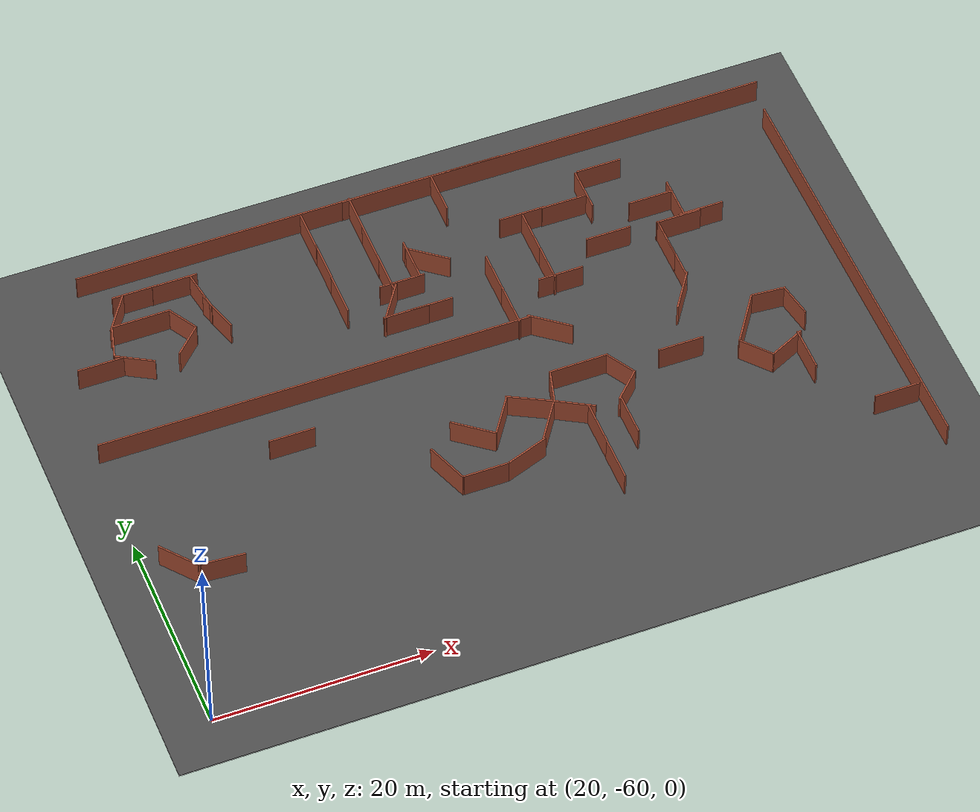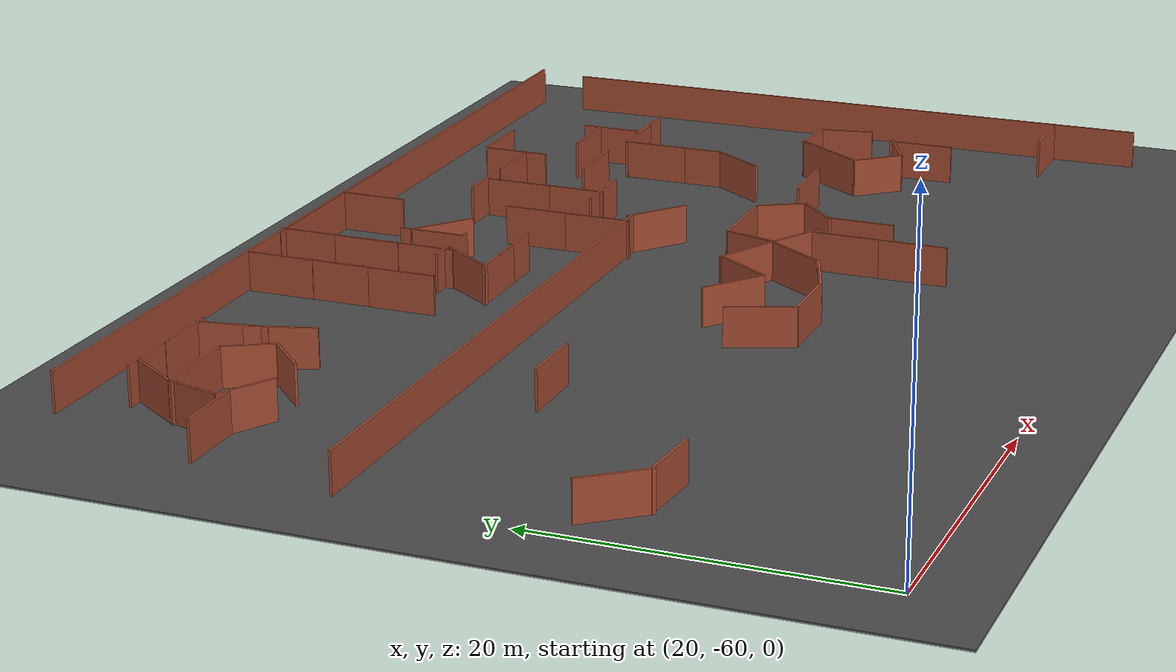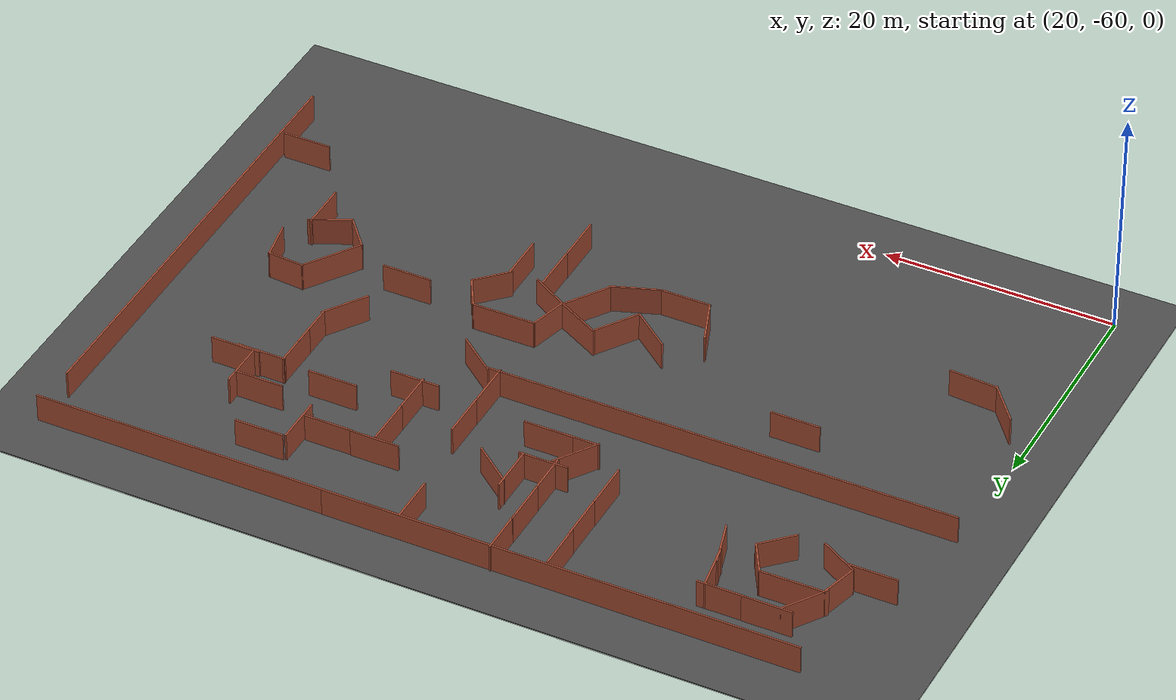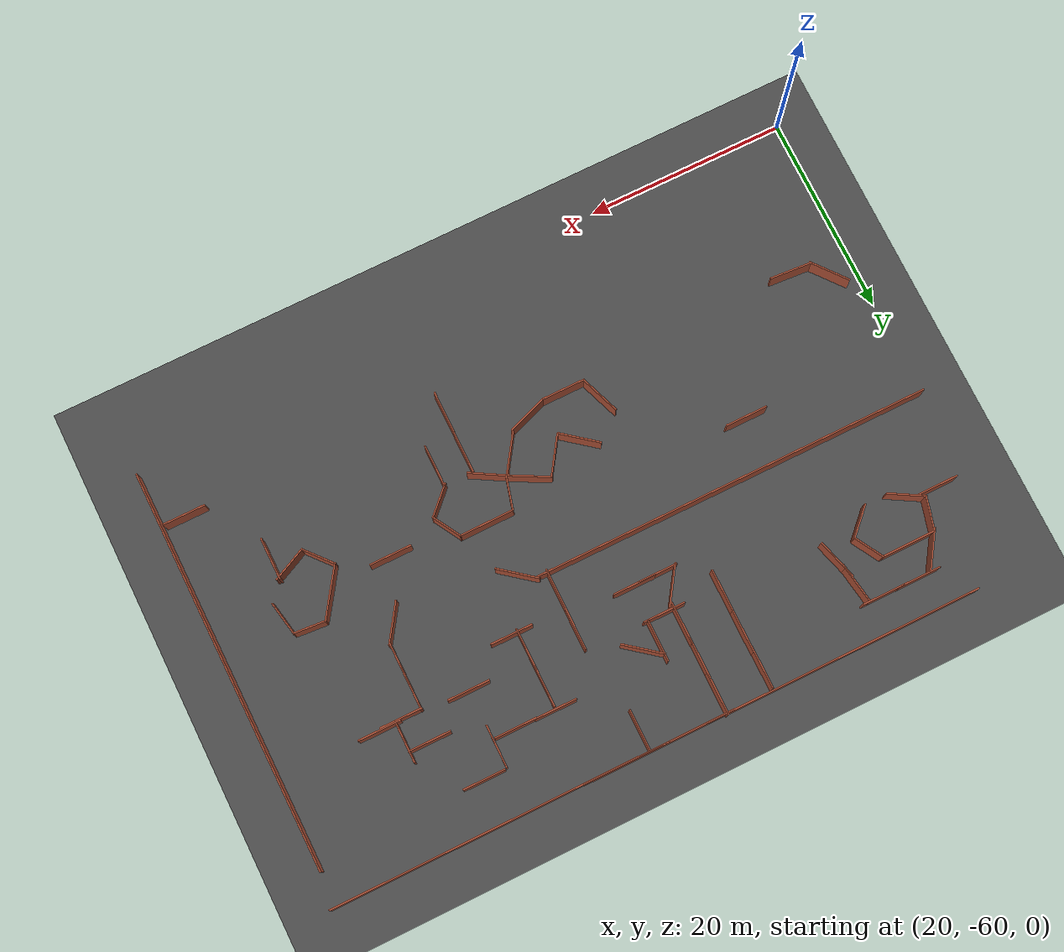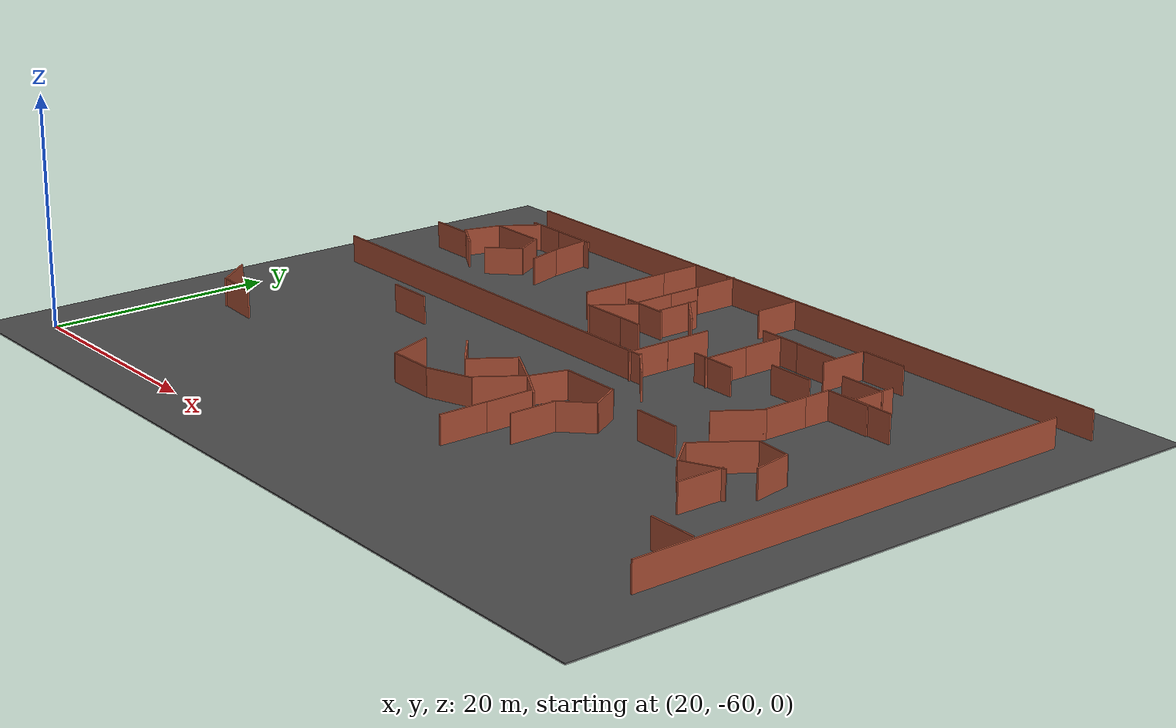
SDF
<sdf version="1.6">
 <world name="default">
  <model name="ground_plane">
   <static>1</static>
   <link name="link">
    <collision name="collision">
     <geometry><plane><normal>0 0 1</normal><size>200 200</size></plane></geometry>
     <surface><friction><ode><mu>100</mu><mu2>50</mu2></ode></friction></surface>
    </collision>
    <visual name="visual">
     <cast_shadows>0</cast_shadows>
     <geometry><plane><normal>0 0 1</normal><size>200 200</size></plane></geometry>
     <material>
      <script><uri>file://media/materials/scripts/gazebo.material</uri><name>Gazebo/Grey</name></script>
     </material>
    </visual>
   </link>
  </model>
  <model name="asphalt_plane">
   <static>1</static>
   <link name="link">
    <collision name="collision"><geometry><box><size>200 200 0.1</size></box></geometry></collision>
    <visual name="visual">
     <cast_shadows>0</cast_shadows>
     <geometry><box><size>200 200 0.1</size></box></geometry>
     <material>
      <script>
       <uri>model://asphalt_plane/materials/scripts</uri>
       <uri>model://asphalt_plane/materials/textures</uri>
       <name>vrc/asphalt</name>
      </script>
     </material>
    </visual>
   </link>
  </model>
  <model name="longwall_clone">
   <pose>40.5339 -30.0862 0 0 -0 0</pose>
   <link name="Wall_0">
    <collision name="Wall_0_Collision">
     <geometry><box><size>40.5 0.15 2.5</size></box></geometry>
     <pose>0 0 1.25 0 -0 0</pose>
    </collision>
    <visual name="Wall_0_Visual">
     <pose>0 0 1.25 0 -0 0</pose>
     <geometry><box><size>40.5 0.15 2.5</size></box></geometry>
     <material>
      <script><uri>file://media/materials/scripts/gazebo.material</uri><name>Gazebo/Bricks</name></script>
      <ambient>1 1 1 1</ambient>
     </material>
    </visual>
    <pose>1e-06 0 0 0 -0 0</pose>
   </link>
   <static>1</static>
  </model>
  <model name="room1">
   <pose>62.9469 -39.1804 0 0 -0 0</pose>
   <link name="Wall_11">
    <collision name="Wall_11_Collision">
     <geometry><box><size>3.25 0.15 2.5</size></box></geometry>
     <pose>0 0 1.25 0 -0 0</pose>
    </collision>
    <visual name="Wall_11_Visual">
     <pose>0 0 1.25 0 -0 0</pose>
     <geometry><box><size>3.25 0.15 2.5</size></box></geometry>
     <material>
      <script><uri>file://media/materials/scripts/gazebo.material</uri><name>Gazebo/Bricks</name></script>
      <ambient>1 1 1 1</ambient>
     </material>
    </visual>
    <pose>3.12132 1.19483 0 0 0 -1.0472</pose>
   </link>
   <link name="Wall_12">
    <collision name="Wall_12_Collision">
     <geometry><box><size>3.5 0.15 2.5</size></box></geometry>
     <pose>0 0 1.25 0 -0 0</pose>
    </collision>
    <visual name="Wall_12_Visual">
     <pose>0 0 1.25 0 -0 0</pose>
     <geometry><box><size>3.5 0.15 2.5</size></box></geometry>
     <material>
      <script><uri>file://media/materials/scripts/gazebo.material</uri><name>Gazebo/Bricks</name></script>
      <ambient>1 1 1 1</ambient>
     </material>
    </visual>
    <pose>2.71192 -1.33192 0 0 0 -2.35619</pose>
   </link>
   <link name="Wall_7">
    <collision name="Wall_7_Collision">
     <geometry><box><size>5.52935 0.15 2.5</size></box></geometry>
     <pose>0 0 1.25 0 -0 0</pose>
    </collision>
    <visual name="Wall_7_Visual">
     <pose>0 0 1.25 0 -0 0</pose>
     <geometry><box><size>5.52935 0.15 2.5</size></box></geometry>
     <material>
      <script><uri>file://media/materials/scripts/gazebo.material</uri><name>Gazebo/Bricks</name></script>
      <ambient>1 1 1 1</ambient>
     </material>
    </visual>
    <pose>-0.343285 2.51793 0 0 0 -3.13444</pose>
   </link>
   <link name="Wall_8">
    <collision name="Wall_8_Collision">
     <geometry><box><size>3.5 0.15 2.5</size></box></geometry>
     <pose>0 0 1.25 0 -0 0</pose>
    </collision>
    <visual name="Wall_8_Visual">
     <pose>0 0 1.25 0 -0 0</pose>
     <geometry><box><size>3.5 0.15 2.5</size></box></geometry>
     <material>
      <script><uri>file://media/materials/scripts/gazebo.material</uri><name>Gazebo/Bricks</name></script>
      <ambient>1 1 1 1</ambient>
     </material>
    </visual>
    <pose>-3.46641 0.880761 0 0 0 -1.8326</pose>
   </link>
   <link name="Wall_9">
    <collision name="Wall_9_Collision">
     <geometry><box><size>3.75 0.15 2.5</size></box></geometry>
     <pose>0 0 1.25 0 -0 0</pose>
    </collision>
    <visual name="Wall_9_Visual">
     <pose>0 0 1.25 0 -0 0</pose>
     <geometry><box><size>3.75 0.15 2.5</size></box></geometry>
     <material>
      <script><uri>file://media/materials/scripts/gazebo.material</uri><name>Gazebo/Bricks</name></script>
      <ambient>1 1 1 1</ambient>
     </material>
    </visual>
    <pose>-2.34109 -1.63716 0 0 0 -0.523599</pose>
   </link>
   <static>1</static>
  </model>
  <model name="worlds_2">
   <pose>57.0992 -38.867 0 0 -0 1.08023</pose>
   <link name="Wall_0">
    <collision name="Wall_0_Collision">
     <geometry><box><size>4.25 0.15 2.5</size></box></geometry>
     <pose>0 0 1.25 0 -0 0</pose>
    </collision>
    <visual name="Wall_0_Visual">
     <pose>0 0 1.25 0 -0 0</pose>
     <geometry><box><size>4.25 0.15 2.5</size></box></geometry>
     <material>
      <script><uri>file://media/materials/scripts/gazebo.material</uri><name>Gazebo/Bricks</name></script>
      <ambient>1 1 1 1</ambient>
     </material>
    </visual>
    <pose>0 -0 0 0 -0 1.5708</pose>
   </link>
   <static>1</static>
  </model>
  <model name="worlds_1_clone">
   <pose>61.6345 -43.6539 0 0 -0 0</pose>
   <link name="Wall_0">
    <collision name="Wall_0_Collision">
     <geometry><box><size>4.25 0.15 2.5</size></box></geometry>
     <pose>0 0 1.25 0 -0 0</pose>
    </collision>
    <visual name="Wall_0_Visual">
     <pose>0 0 1.25 0 -0 0</pose>
     <geometry><box><size>4.25 0.15 2.5</size></box></geometry>
     <material>
      <script><uri>file://media/materials/scripts/gazebo.material</uri><name>Gazebo/Bricks</name></script>
      <ambient>1 1 1 1</ambient>
     </material>
    </visual>
    <pose>0 -0 0 0 -0 1.5708</pose>
   </link>
   <static>1</static>
  </model>
  <model name="worlds_1_clone_0">
   <pose>61.6134 -47.8914 0 0 -0 0</pose>
   <link name="Wall_0">
    <collision name="Wall_0_Collision">
     <geometry><box><size>4.25 0.15 2.5</size></box></geometry>
     <pose>0 0 1.25 0 -0 0</pose>
    </collision>
    <visual name="Wall_0_Visual">
     <pose>0 0 1.25 0 -0 0</pose>
     <geometry><box><size>4.25 0.15 2.5</size></box></geometry>
     <material>
      <script><uri>file://media/materials/scripts/gazebo.material</uri><name>Gazebo/Bricks</name></script>
      <ambient>1 1 1 1</ambient>
     </material>
    </visual>
    <pose>0 -0 0 0 -0 1.5708</pose>
   </link>
   <static>1</static>
  </model>
  <model name="worlds_1_clone_0_clone_clone_0">
   <pose>71.8838 -37.8494 0 0 0 -1.57092</pose>
   <link name="Wall_0">
    <collision name="Wall_0_Collision">
     <geometry><box><size>4.25 0.15 2.5</size></box></geometry>
     <pose>0 0 1.25 0 -0 0</pose>
    </collision>
    <visual name="Wall_0_Visual">
     <pose>0 0 1.25 0 -0 0</pose>
     <geometry><box><size>4.25 0.15 2.5</size></box></geometry>
     <material>
      <script><uri>file://media/materials/scripts/gazebo.material</uri><name>Gazebo/Bricks</name></script>
      <ambient>1 1 1 1</ambient>
     </material>
    </visual>
    <pose>0 -0 0 0 -0 1.5708</pose>
   </link>
   <static>1</static>
  </model>
  <model name="worlds_1_clone_1_clone_7_clone_clone">
   <pose>54.1633 -39.674 0 0 0 -0.589381</pose>
   <link name="Wall_0">
    <collision name="Wall_0_Collision">
     <geometry><box><size>4.25 0.15 2.5</size></box></geometry>
     <pose>0 0 1.25 0 -0 0</pose>
    </collision>
    <visual name="Wall_0_Visual">
     <pose>0 0 1.25 0 -0 0</pose>
     <geometry><box><size>4.25 0.15 2.5</size></box></geometry>
     <material>
      <script><uri>file://media/materials/scripts/gazebo.material</uri><name>Gazebo/Bricks</name></script>
      <ambient>1 1 1 1</ambient>
     </material>
    </visual>
    <pose>0 -0 0 0 -0 1.5708</pose>
   </link>
   <static>1</static>
  </model>
  <model name="worlds_1_clone_1_clone_7_clone_clone_clone">
   <pose>57.7678 -41.7145 0 0 0 -0.589381</pose>
   <link name="Wall_0">
    <collision name="Wall_0_Collision">
     <geometry><box><size>4.25 0.15 2.5</size></box></geometry>
     <pose>0 0 1.25 0 -0 0</pose>
    </collision>
    <visual name="Wall_0_Visual">
     <pose>0 0 1.25 0 -0 0</pose>
     <geometry><box><size>4.25 0.15 2.5</size></box></geometry>
     <material>
      <script><uri>file://media/materials/scripts/gazebo.material</uri><name>Gazebo/Bricks</name></script>
      <ambient>1 1 1 1</ambient>
     </material>
    </visual>
    <pose>0 -0 0 0 -0 1.5708</pose>
   </link>
   <static>1</static>
  </model>
  <model name="worlds_1_clone_0_clone_clone_0_clone_clone_0_clone_clone">
   <pose>47.8022 -43.0147 0 0 0 -2.78777</pose>
   <link name="Wall_0">
    <collision name="Wall_0_Collision">
     <geometry><box><size>4.25 0.15 2.5</size></box></geometry>
     <pose>0 0 1.25 0 -0 0</pose>
    </collision>
    <visual name="Wall_0_Visual">
     <pose>0 0 1.25 0 -0 0</pose>
     <geometry><box><size>4.25 0.15 2.5</size></box></geometry>
     <material>
      <script><uri>file://media/materials/scripts/gazebo.material</uri><name>Gazebo/Bricks</name></script>
      <ambient>1 1 1 1</ambient>
     </material>
    </visual>
    <pose>0 -0 0 0 -0 1.5708</pose>
   </link>
   <static>1</static>
  </model>
  <model name="worlds_1_clone_0_clone_clone_0_clone_clone_0_clone_clone_0">
   <pose>54.7413 -44.255 0 0 0 -1.22347</pose>
   <link name="Wall_0">
    <collision name="Wall_0_Collision">
     <geometry><box><size>4.25 0.15 2.5</size></box></geometry>
     <pose>0 0 1.25 0 -0 0</pose>
    </collision>
    <visual name="Wall_0_Visual">
     <pose>0 0 1.25 0 -0 0</pose>
     <geometry><box><size>4.25 0.15 2.5</size></box></geometry>
     <material>
      <script><uri>file://media/materials/scripts/gazebo.material</uri><name>Gazebo/Bricks</name></script>
      <ambient>1 1 1 1</ambient>
     </material>
    </visual>
    <pose>0 -0 0 0 -0 1.5708</pose>
   </link>
   <static>1</static>
  </model>
  <model name="worlds_1_clone_0_clone_clone_0_clone_clone_0_clone_clone_clone">
   <pose>50.6997 -44.9664 0 0 0 -1.57092</pose>
   <link name="Wall_0">
    <collision name="Wall_0_Collision">
     <geometry><box><size>4.25 0.15 2.5</size></box></geometry>
     <pose>0 0 1.25 0 -0 0</pose>
    </collision>
    <visual name="Wall_0_Visual">
     <pose>0 0 1.25 0 -0 0</pose>
     <geometry><box><size>4.25 0.15 2.5</size></box></geometry>
     <material>
      <script><uri>file://media/materials/scripts/gazebo.material</uri><name>Gazebo/Bricks</name></script>
      <ambient>1 1 1 1</ambient>
     </material>
    </visual>
    <pose>0 -0 0 0 -0 1.5708</pose>
   </link>
   <static>1</static>
  </model>
  <model name="worlds_1_clone_1_clone_7_clone_clone_0">
   <pose>51.3459 -40.1271 0 0 -0 0.90029</pose>
   <link name="Wall_0">
    <collision name="Wall_0_Collision">
     <geometry><box><size>4.25 0.15 2.5</size></box></geometry>
     <pose>0 0 1.25 0 -0 0</pose>
    </collision>
    <visual name="Wall_0_Visual">
     <pose>0 0 1.25 0 -0 0</pose>
     <geometry><box><size>4.25 0.15 2.5</size></box></geometry>
     <material>
      <script><uri>file://media/materials/scripts/gazebo.material</uri><name>Gazebo/Bricks</name></script>
      <ambient>1 1 1 1</ambient>
     </material>
    </visual>
    <pose>0 -0 0 0 -0 1.5708</pose>
   </link>
   <static>1</static>
  </model>
  <model name="worlds_1_clone_clone">
   <pose>64.6066 -43.6549 0 0 -0 0</pose>
   <link name="Wall_0">
    <collision name="Wall_0_Collision">
     <geometry><box><size>4.25 0.15 2.5</size></box></geometry>
     <pose>0 0 1.25 0 -0 0</pose>
    </collision>
    <visual name="Wall_0_Visual">
     <pose>0 0 1.25 0 -0 0</pose>
     <geometry><box><size>4.25 0.15 2.5</size></box></geometry>
     <material>
      <script><uri>file://media/materials/scripts/gazebo.material</uri><name>Gazebo/Bricks</name></script>
      <ambient>1 1 1 1</ambient>
     </material>
    </visual>
    <pose>0 -0 0 0 -0 1.5708</pose>
   </link>
   <static>1</static>
  </model>
  <model name="longwall_clone_clone">
   <pose>70.133 -11.2921 0 0 -0 0</pose>
   <link name="Wall_0">
    <collision name="Wall_0_Collision">
     <geometry><box><size>40.5 0.15 2.5</size></box></geometry>
     <pose>0 0 1.25 0 -0 0</pose>
    </collision>
    <visual name="Wall_0_Visual">
     <pose>0 0 1.25 0 -0 0</pose>
     <geometry><box><size>40.5 0.15 2.5</size></box></geometry>
     <material>
      <script><uri>file://media/materials/scripts/gazebo.material</uri><name>Gazebo/Bricks</name></script>
      <ambient>1 1 1 1</ambient>
     </material>
    </visual>
    <pose>1e-06 0 0 0 -0 0</pose>
   </link>
   <static>1</static>
  </model>
  <model name="longwall_clone_clone_3_clone_2">
   <pose>89.7563 -34.9133 0 0 0 -1.56602</pose>
   <link name="Wall_0">
    <collision name="Wall_0_Collision">
     <geometry><box><size>40.5 0.15 2.5</size></box></geometry>
     <pose>0 0 1.25 0 -0 0</pose>
    </collision>
    <visual name="Wall_0_Visual">
     <pose>0 0 1.25 0 -0 0</pose>
     <geometry><box><size>40.5 0.15 2.5</size></box></geometry>
     <material>
      <script><uri>file://media/materials/scripts/gazebo.material</uri><name>Gazebo/Bricks</name></script>
      <ambient>1 1 1 1</ambient>
     </material>
    </visual>
    <pose>1e-06 0 0 0 -0 0</pose>
   </link>
   <static>1</static>
  </model>
  <model name="longwall_clone_clone_clone">
   <pose>44.9259 -11.2589 0 0 -0 0</pose>
   <link name="Wall_0">
    <collision name="Wall_0_Collision">
     <geometry><box><size>40.5 0.15 2.5</size></box></geometry>
     <pose>0 0 1.25 0 -0 0</pose>
    </collision>
    <visual name="Wall_0_Visual">
     <pose>0 0 1.25 0 -0 0</pose>
     <geometry><box><size>40.5 0.15 2.5</size></box></geometry>
     <material>
      <script><uri>file://media/materials/scripts/gazebo.material</uri><name>Gazebo/Bricks</name></script>
      <ambient>1 1 1 1</ambient>
     </material>
    </visual>
    <pose>1e-06 0 0 0 -0 0</pose>
   </link>
   <static>1</static>
  </model>
  <model name="worlds_1_clone_0_clone_clone_0_clone_clone_clone_3">
   <pose>87.4411 -49.6799 0 0 0 -1.57092</pose>
   <link name="Wall_0">
    <collision name="Wall_0_Collision">
     <geometry><box><size>4.25 0.15 2.5</size></box></geometry>
     <pose>0 0 1.25 0 -0 0</pose>
    </collision>
    <visual name="Wall_0_Visual">
     <pose>0 0 1.25 0 -0 0</pose>
     <geometry><box><size>4.25 0.15 2.5</size></box></geometry>
     <material>
      <script><uri>file://media/materials/scripts/gazebo.material</uri><name>Gazebo/Bricks</name></script>
      <ambient>1 1 1 1</ambient>
     </material>
    </visual>
    <pose>0 -0 0 0 -0 1.5708</pose>
   </link>
   <static>1</static>
  </model>
  <model name="worlds_1_clone_1_clone_clone_0_clone_3">
   <pose>45.9096 -21.4531 0 0 -0 0</pose>
   <link name="Wall_0">
    <collision name="Wall_0_Collision">
     <geometry><box><size>4.25 0.15 2.5</size></box></geometry>
     <pose>0 0 1.25 0 -0 0</pose>
    </collision>
    <visual name="Wall_0_Visual">
     <pose>0 0 1.25 0 -0 0</pose>
     <geometry><box><size>4.25 0.15 2.5</size></box></geometry>
     <material>
      <script><uri>file://media/materials/scripts/gazebo.material</uri><name>Gazebo/Bricks</name></script>
      <ambient>1 1 1 1</ambient>
     </material>
    </visual>
    <pose>0 -0 0 0 -0 1.5708</pose>
   </link>
   <static>1</static>
  </model>
  <model name="worlds_1_clone_1_clone_clone_0_clone_5">
   <pose>45.9289 -17.2509 0 0 -0 0</pose>
   <link name="Wall_0">
    <collision name="Wall_0_Collision">
     <geometry><box><size>4.25 0.15 2.5</size></box></geometry>
     <pose>0 0 1.25 0 -0 0</pose>
    </collision>
    <visual name="Wall_0_Visual">
     <pose>0 0 1.25 0 -0 0</pose>
     <geometry><box><size>4.25 0.15 2.5</size></box></geometry>
     <material>
      <script><uri>file://media/materials/scripts/gazebo.material</uri><name>Gazebo/Bricks</name></script>
      <ambient>1 1 1 1</ambient>
     </material>
    </visual>
    <pose>0 -0 0 0 -0 1.5708</pose>
   </link>
   <static>1</static>
  </model>
  <model name="worlds_1_clone_1_clone_clone_0_clone_6">
   <pose>45.8934 -13.5337 0 0 -0 0</pose>
   <link name="Wall_0">
    <collision name="Wall_0_Collision">
     <geometry><box><size>4.25 0.15 2.5</size></box></geometry>
     <pose>0 0 1.25 0 -0 0</pose>
    </collision>
    <visual name="Wall_0_Visual">
     <pose>0 0 1.25 0 -0 0</pose>
     <geometry><box><size>4.25 0.15 2.5</size></box></geometry>
     <material>
      <script><uri>file://media/materials/scripts/gazebo.material</uri><name>Gazebo/Bricks</name></script>
      <ambient>1 1 1 1</ambient>
     </material>
    </visual>
    <pose>0 -0 0 0 -0 1.5708</pose>
   </link>
   <static>1</static>
  </model>
  <model name="room1_clone">
   <pose>28.8484 -20.2692 0 0 -0 0</pose>
   <link name="Wall_11">
    <collision name="Wall_11_Collision">
     <geometry><box><size>3.25 0.15 2.5</size></box></geometry>
     <pose>0 0 1.25 0 -0 0</pose>
    </collision>
    <visual name="Wall_11_Visual">
     <pose>0 0 1.25 0 -0 0</pose>
     <geometry><box><size>3.25 0.15 2.5</size></box></geometry>
     <material>
      <script><uri>file://media/materials/scripts/gazebo.material</uri><name>Gazebo/Bricks</name></script>
      <ambient>1 1 1 1</ambient>
     </material>
    </visual>
    <pose>3.12132 1.19483 0 0 0 -1.0472</pose>
   </link>
   <link name="Wall_12">
    <collision name="Wall_12_Collision">
     <geometry><box><size>3.5 0.15 2.5</size></box></geometry>
     <pose>0 0 1.25 0 -0 0</pose>
    </collision>
    <visual name="Wall_12_Visual">
     <pose>0 0 1.25 0 -0 0</pose>
     <geometry><box><size>3.5 0.15 2.5</size></box></geometry>
     <material>
      <script><uri>file://media/materials/scripts/gazebo.material</uri><name>Gazebo/Bricks</name></script>
      <ambient>1 1 1 1</ambient>
     </material>
    </visual>
    <pose>2.71192 -1.33192 0 0 0 -2.35619</pose>
   </link>
   <link name="Wall_7">
    <collision name="Wall_7_Collision">
     <geometry><box><size>5.52935 0.15 2.5</size></box></geometry>
     <pose>0 0 1.25 0 -0 0</pose>
    </collision>
    <visual name="Wall_7_Visual">
     <pose>0 0 1.25 0 -0 0</pose>
     <geometry><box><size>5.52935 0.15 2.5</size></box></geometry>
     <material>
      <script><uri>file://media/materials/scripts/gazebo.material</uri><name>Gazebo/Bricks</name></script>
      <ambient>1 1 1 1</ambient>
     </material>
    </visual>
    <pose>-0.343285 2.51793 0 0 0 -3.13444</pose>
   </link>
   <link name="Wall_8">
    <collision name="Wall_8_Collision">
     <geometry><box><size>3.5 0.15 2.5</size></box></geometry>
     <pose>0 0 1.25 0 -0 0</pose>
    </collision>
    <visual name="Wall_8_Visual">
     <pose>0 0 1.25 0 -0 0</pose>
     <geometry><box><size>3.5 0.15 2.5</size></box></geometry>
     <material>
      <script><uri>file://media/materials/scripts/gazebo.material</uri><name>Gazebo/Bricks</name></script>
      <ambient>1 1 1 1</ambient>
     </material>
    </visual>
    <pose>-3.46641 0.880761 0 0 0 -1.8326</pose>
   </link>
   <link name="Wall_9">
    <collision name="Wall_9_Collision">
     <geometry><box><size>3.75 0.15 2.5</size></box></geometry>
     <pose>0 0 1.25 0 -0 0</pose>
    </collision>
    <visual name="Wall_9_Visual">
     <pose>0 0 1.25 0 -0 0</pose>
     <geometry><box><size>3.75 0.15 2.5</size></box></geometry>
     <material>
      <script><uri>file://media/materials/scripts/gazebo.material</uri><name>Gazebo/Bricks</name></script>
      <ambient>1 1 1 1</ambient>
     </material>
    </visual>
    <pose>-2.34109 -1.63716 0 0 0 -0.523599</pose>
   </link>
   <static>1</static>
  </model>
  <model name="room1_clone_2">
   <pose>80.5801 -38.3089 0 0 -0 0.969844</pose>
   <link name="Wall_11">
    <collision name="Wall_11_Collision">
     <geometry><box><size>3.25 0.15 2.5</size></box></geometry>
     <pose>0 0 1.25 0 -0 0</pose>
    </collision>
    <visual name="Wall_11_Visual">
     <pose>0 0 1.25 0 -0 0</pose>
     <geometry><box><size>3.25 0.15 2.5</size></box></geometry>
     <material>
      <script><uri>file://media/materials/scripts/gazebo.material</uri><name>Gazebo/Bricks</name></script>
      <ambient>1 1 1 1</ambient>
     </material>
    </visual>
    <pose>3.12132 1.19483 0 0 0 -1.0472</pose>
   </link>
   <link name="Wall_12">
    <collision name="Wall_12_Collision">
     <geometry><box><size>3.5 0.15 2.5</size></box></geometry>
     <pose>0 0 1.25 0 -0 0</pose>
    </collision>
    <visual name="Wall_12_Visual">
     <pose>0 0 1.25 0 -0 0</pose>
     <geometry><box><size>3.5 0.15 2.5</size></box></geometry>
     <material>
      <script><uri>file://media/materials/scripts/gazebo.material</uri><name>Gazebo/Bricks</name></script>
      <ambient>1 1 1 1</ambient>
     </material>
    </visual>
    <pose>2.71192 -1.33192 0 0 0 -2.35619</pose>
   </link>
   <link name="Wall_7">
    <collision name="Wall_7_Collision">
     <geometry><box><size>5.52935 0.15 2.5</size></box></geometry>
     <pose>0 0 1.25 0 -0 0</pose>
    </collision>
    <visual name="Wall_7_Visual">
     <pose>0 0 1.25 0 -0 0</pose>
     <geometry><box><size>5.52935 0.15 2.5</size></box></geometry>
     <material>
      <script><uri>file://media/materials/scripts/gazebo.material</uri><name>Gazebo/Bricks</name></script>
      <ambient>1 1 1 1</ambient>
     </material>
    </visual>
    <pose>-0.343285 2.51793 0 0 0 -3.13444</pose>
   </link>
   <link name="Wall_8">
    <collision name="Wall_8_Collision">
     <geometry><box><size>3.5 0.15 2.5</size></box></geometry>
     <pose>0 0 1.25 0 -0 0</pose>
    </collision>
    <visual name="Wall_8_Visual">
     <pose>0 0 1.25 0 -0 0</pose>
     <geometry><box><size>3.5 0.15 2.5</size></box></geometry>
     <material>
      <script><uri>file://media/materials/scripts/gazebo.material</uri><name>Gazebo/Bricks</name></script>
      <ambient>1 1 1 1</ambient>
     </material>
    </visual>
    <pose>-3.46641 0.880761 0 0 0 -1.8326</pose>
   </link>
   <link name="Wall_9">
    <collision name="Wall_9_Collision">
     <geometry><box><size>3.75 0.15 2.5</size></box></geometry>
     <pose>0 0 1.25 0 -0 0</pose>
    </collision>
    <visual name="Wall_9_Visual">
     <pose>0 0 1.25 0 -0 0</pose>
     <geometry><box><size>3.75 0.15 2.5</size></box></geometry>
     <material>
      <script><uri>file://media/materials/scripts/gazebo.material</uri><name>Gazebo/Bricks</name></script>
      <ambient>1 1 1 1</ambient>
     </material>
    </visual>
    <pose>-2.34109 -1.63716 0 0 0 -0.523599</pose>
   </link>
   <static>1</static>
  </model>
  <model name="worlds_1_clone_clone_clone">
   <pose>81.9554 -42.414 0 0 -0 0</pose>
   <link name="Wall_0">
    <collision name="Wall_0_Collision">
     <geometry><box><size>4.25 0.15 2.5</size></box></geometry>
     <pose>0 0 1.25 0 -0 0</pose>
    </collision>
    <visual name="Wall_0_Visual">
     <pose>0 0 1.25 0 -0 0</pose>
     <geometry><box><size>4.25 0.15 2.5</size></box></geometry>
     <material>
      <script><uri>file://media/materials/scripts/gazebo.material</uri><name>Gazebo/Bricks</name></script>
      <ambient>1 1 1 1</ambient>
     </material>
    </visual>
    <pose>0 -0 0 0 -0 1.5708</pose>
   </link>
   <static>1</static>
  </model>
  <model name="worlds_1_clone_clone_0">
   <pose>59.5845 -28.2096 0 0 -0 0</pose>
   <link name="Wall_0">
    <collision name="Wall_0_Collision">
     <geometry><box><size>4.25 0.15 2.5</size></box></geometry>
     <pose>0 0 1.25 0 -0 0</pose>
    </collision>
    <visual name="Wall_0_Visual">
     <pose>0 0 1.25 0 -0 0</pose>
     <geometry><box><size>4.25 0.15 2.5</size></box></geometry>
     <material>
      <script><uri>file://media/materials/scripts/gazebo.material</uri><name>Gazebo/Bricks</name></script>
      <ambient>1 1 1 1</ambient>
     </material>
    </visual>
    <pose>0 -0 0 0 -0 1.5708</pose>
   </link>
   <static>1</static>
  </model>
  <model name="worlds_1_clone_clone_1">
   <pose>75.4189 -28.4288 0 0 -0 0</pose>
   <link name="Wall_0">
    <collision name="Wall_0_Collision">
     <geometry><box><size>4.25 0.15 2.5</size></box></geometry>
     <pose>0 0 1.25 0 -0 0</pose>
    </collision>
    <visual name="Wall_0_Visual">
     <pose>0 0 1.25 0 -0 0</pose>
     <geometry><box><size>4.25 0.15 2.5</size></box></geometry>
     <material>
      <script><uri>file://media/materials/scripts/gazebo.material</uri><name>Gazebo/Bricks</name></script>
      <ambient>1 1 1 1</ambient>
     </material>
    </visual>
    <pose>0 -0 0 0 -0 1.5708</pose>
   </link>
   <static>1</static>
  </model>
  <model name="worlds_1_clone_clone_2">
   <pose>75.4102 -25.8949 0 0 -0 0</pose>
   <link name="Wall_0">
    <collision name="Wall_0_Collision">
     <geometry><box><size>4.25 0.15 2.5</size></box></geometry>
     <pose>0 0 1.25 0 -0 0</pose>
    </collision>
    <visual name="Wall_0_Visual">
     <pose>0 0 1.25 0 -0 0</pose>
     <geometry><box><size>4.25 0.15 2.5</size></box></geometry>
     <material>
      <script><uri>file://media/materials/scripts/gazebo.material</uri><name>Gazebo/Bricks</name></script>
      <ambient>1 1 1 1</ambient>
     </material>
    </visual>
    <pose>0 -0 0 0 -0 1.5708</pose>
   </link>
   <static>1</static>
  </model>
  <model name="worlds_1_clone_0_clone_clone_0_clone_0">
   <pose>77.3992 -23.8784 0 0 0 -1.57092</pose>
   <link name="Wall_0">
    <collision name="Wall_0_Collision">
     <geometry><box><size>4.25 0.15 2.5</size></box></geometry>
     <pose>0 0 1.25 0 -0 0</pose>
    </collision>
    <visual name="Wall_0_Visual">
     <pose>0 0 1.25 0 -0 0</pose>
     <geometry><box><size>4.25 0.15 2.5</size></box></geometry>
     <material>
      <script><uri>file://media/materials/scripts/gazebo.material</uri><name>Gazebo/Bricks</name></script>
      <ambient>1 1 1 1</ambient>
     </material>
    </visual>
    <pose>0 -0 0 0 -0 1.5708</pose>
   </link>
   <static>1</static>
  </model>
  <model name="worlds_1_clone_0_clone_clone_0_clone_1">
   <pose>79.6307 -23.7333 0 0 0 -1.57092</pose>
   <link name="Wall_0">
    <collision name="Wall_0_Collision">
     <geometry><box><size>4.25 0.15 2.5</size></box></geometry>
     <pose>0 0 1.25 0 -0 0</pose>
    </collision>
    <visual name="Wall_0_Visual">
     <pose>0 0 1.25 0 -0 0</pose>
     <geometry><box><size>4.25 0.15 2.5</size></box></geometry>
     <material>
      <script><uri>file://media/materials/scripts/gazebo.material</uri><name>Gazebo/Bricks</name></script>
      <ambient>1 1 1 1</ambient>
     </material>
    </visual>
    <pose>0 -0 0 0 -0 1.5708</pose>
   </link>
   <static>1</static>
  </model>
  <model name="worlds_1_clone_0_clone_clone_0_clone_2">
   <pose>65.0632 -26.3352 0 0 0 -1.57092</pose>
   <link name="Wall_0">
    <collision name="Wall_0_Collision">
     <geometry><box><size>4.25 0.15 2.5</size></box></geometry>
     <pose>0 0 1.25 0 -0 0</pose>
    </collision>
    <visual name="Wall_0_Visual">
     <pose>0 0 1.25 0 -0 0</pose>
     <geometry><box><size>4.25 0.15 2.5</size></box></geometry>
     <material>
      <script><uri>file://media/materials/scripts/gazebo.material</uri><name>Gazebo/Bricks</name></script>
      <ambient>1 1 1 1</ambient>
     </material>
    </visual>
    <pose>0 -0 0 0 -0 1.5708</pose>
   </link>
   <static>1</static>
  </model>
  <model name="worlds_1_clone_0_clone_clone_0_clone_3">
   <pose>70.8072 -23.4621 0 0 0 -1.57092</pose>
   <link name="Wall_0">
    <collision name="Wall_0_Collision">
     <geometry><box><size>4.25 0.15 2.5</size></box></geometry>
     <pose>0 0 1.25 0 -0 0</pose>
    </collision>
    <visual name="Wall_0_Visual">
     <pose>0 0 1.25 0 -0 0</pose>
     <geometry><box><size>4.25 0.15 2.5</size></box></geometry>
     <material>
      <script><uri>file://media/materials/scripts/gazebo.material</uri><name>Gazebo/Bricks</name></script>
      <ambient>1 1 1 1</ambient>
     </material>
    </visual>
    <pose>0 -0 0 0 -0 1.5708</pose>
   </link>
   <static>1</static>
  </model>
  <model name="worlds_1_clone_0_clone_clone_0_clone_4">
   <pose>64.4358 -18.4576 0 0 0 -1.57092</pose>
   <link name="Wall_0">
    <collision name="Wall_0_Collision">
     <geometry><box><size>4.25 0.15 2.5</size></box></geometry>
     <pose>0 0 1.25 0 -0 0</pose>
    </collision>
    <visual name="Wall_0_Visual">
     <pose>0 0 1.25 0 -0 0</pose>
     <geometry><box><size>4.25 0.15 2.5</size></box></geometry>
     <material>
      <script><uri>file://media/materials/scripts/gazebo.material</uri><name>Gazebo/Bricks</name></script>
      <ambient>1 1 1 1</ambient>
     </material>
    </visual>
    <pose>0 -0 0 0 -0 1.5708</pose>
   </link>
   <static>1</static>
  </model>
  <model name="worlds_1_clone_clone_0_clone">
   <pose>64.4379 -20.7736 0 0 -0 0</pose>
   <link name="Wall_0">
    <collision name="Wall_0_Collision">
     <geometry><box><size>4.25 0.15 2.5</size></box></geometry>
     <pose>0 0 1.25 0 -0 0</pose>
    </collision>
    <visual name="Wall_0_Visual">
     <pose>0 0 1.25 0 -0 0</pose>
     <geometry><box><size>4.25 0.15 2.5</size></box></geometry>
     <material>
      <script><uri>file://media/materials/scripts/gazebo.material</uri><name>Gazebo/Bricks</name></script>
      <ambient>1 1 1 1</ambient>
     </material>
    </visual>
    <pose>0 -0 0 0 -0 1.5708</pose>
   </link>
   <static>1</static>
  </model>
  <model name="worlds_1_clone_clone_0_clone_0">
   <pose>58.4374 -13.3357 0 0 -0 0</pose>
   <link name="Wall_0">
    <collision name="Wall_0_Collision">
     <geometry><box><size>4.25 0.15 2.5</size></box></geometry>
     <pose>0 0 1.25 0 -0 0</pose>
    </collision>
    <visual name="Wall_0_Visual">
     <pose>0 0 1.25 0 -0 0</pose>
     <geometry><box><size>4.25 0.15 2.5</size></box></geometry>
     <material>
      <script><uri>file://media/materials/scripts/gazebo.material</uri><name>Gazebo/Bricks</name></script>
      <ambient>1 1 1 1</ambient>
     </material>
    </visual>
    <pose>0 -0 0 0 -0 1.5708</pose>
   </link>
   <static>1</static>
  </model>
  <model name="worlds_1_clone_clone_0_clone_1">
   <pose>59.5905 -24.2097 0 0 -0 0</pose>
   <link name="Wall_0">
    <collision name="Wall_0_Collision">
     <geometry><box><size>4.25 0.15 2.5</size></box></geometry>
     <pose>0 0 1.25 0 -0 0</pose>
    </collision>
    <visual name="Wall_0_Visual">
     <pose>0 0 1.25 0 -0 0</pose>
     <geometry><box><size>4.25 0.15 2.5</size></box></geometry>
     <material>
      <script><uri>file://media/materials/scripts/gazebo.material</uri><name>Gazebo/Bricks</name></script>
      <ambient>1 1 1 1</ambient>
     </material>
    </visual>
    <pose>0 -0 0 0 -0 1.5708</pose>
   </link>
   <static>1</static>
  </model>
  <model name="worlds_1_clone_0_clone_clone_0_clone_2_clone">
   <pose>51.6197 -22 0 0 0 -1.57092</pose>
   <link name="Wall_0">
    <collision name="Wall_0_Collision">
     <geometry><box><size>4.25 0.15 2.5</size></box></geometry>
     <pose>0 0 1.25 0 -0 0</pose>
    </collision>
    <visual name="Wall_0_Visual">
     <pose>0 0 1.25 0 -0 0</pose>
     <geometry><box><size>4.25 0.15 2.5</size></box></geometry>
     <material>
      <script><uri>file://media/materials/scripts/gazebo.material</uri><name>Gazebo/Bricks</name></script>
      <ambient>1 1 1 1</ambient>
     </material>
    </visual>
    <pose>0 -0 0 0 -0 1.5708</pose>
   </link>
   <static>1</static>
  </model>
  <model name="worlds_1_clone_clone_0_clone_clone">
   <pose>64.445 -24.4791 0 0 -0 0</pose>
   <link name="Wall_0">
    <collision name="Wall_0_Collision">
     <geometry><box><size>4.25 0.15 2.5</size></box></geometry>
     <pose>0 0 1.25 0 -0 0</pose>
    </collision>
    <visual name="Wall_0_Visual">
     <pose>0 0 1.25 0 -0 0</pose>
     <geometry><box><size>4.25 0.15 2.5</size></box></geometry>
     <material>
      <script><uri>file://media/materials/scripts/gazebo.material</uri><name>Gazebo/Bricks</name></script>
      <ambient>1 1 1 1</ambient>
     </material>
    </visual>
    <pose>0 -0 0 0 -0 1.5708</pose>
   </link>
   <static>1</static>
  </model>
  <model name="worlds_1_clone_0_clone_clone_0_clone_3_clone">
   <pose>68.467 -18.5142 0 0 0 -1.57092</pose>
   <link name="Wall_0">
    <collision name="Wall_0_Collision">
     <geometry><box><size>4.25 0.15 2.5</size></box></geometry>
     <pose>0 0 1.25 0 -0 0</pose>
    </collision>
    <visual name="Wall_0_Visual">
     <pose>0 0 1.25 0 -0 0</pose>
     <geometry><box><size>4.25 0.15 2.5</size></box></geometry>
     <material>
      <script><uri>file://media/materials/scripts/gazebo.material</uri><name>Gazebo/Bricks</name></script>
      <ambient>1 1 1 1</ambient>
     </material>
    </visual>
    <pose>0 -0 0 0 -0 1.5708</pose>
   </link>
   <static>1</static>
  </model>
  <model name="worlds_1_clone_0_clone_clone_0_clone_3_clone_0">
   <pose>73.0187 -15.5975 0 0 0 -1.57092</pose>
   <link name="Wall_0">
    <collision name="Wall_0_Collision">
     <geometry><box><size>4.25 0.15 2.5</size></box></geometry>
     <pose>0 0 1.25 0 -0 0</pose>
    </collision>
    <visual name="Wall_0_Visual">
     <pose>0 0 1.25 0 -0 0</pose>
     <geometry><box><size>4.25 0.15 2.5</size></box></geometry>
     <material>
      <script><uri>file://media/materials/scripts/gazebo.material</uri><name>Gazebo/Bricks</name></script>
      <ambient>1 1 1 1</ambient>
     </material>
    </visual>
    <pose>0 -0 0 0 -0 1.5708</pose>
   </link>
   <static>1</static>
  </model>
  <model name="worlds_1_clone_clone_0_clone_clone_clone">
   <pose>70.7191 -17.783 0 0 -0 0</pose>
   <link name="Wall_0">
    <collision name="Wall_0_Collision">
     <geometry><box><size>4.25 0.15 2.5</size></box></geometry>
     <pose>0 0 1.25 0 -0 0</pose>
    </collision>
    <visual name="Wall_0_Visual">
     <pose>0 0 1.25 0 -0 0</pose>
     <geometry><box><size>4.25 0.15 2.5</size></box></geometry>
     <material>
      <script><uri>file://media/materials/scripts/gazebo.material</uri><name>Gazebo/Bricks</name></script>
      <ambient>1 1 1 1</ambient>
     </material>
    </visual>
    <pose>0 -0 0 0 -0 1.5708</pose>
   </link>
   <static>1</static>
  </model>
  <model name="worlds_1_clone_clone_0_clone_clone_clone_0">
   <pose>77.9943 -21.8284 0 0 -0 0</pose>
   <link name="Wall_0">
    <collision name="Wall_0_Collision">
     <geometry><box><size>4.25 0.15 2.5</size></box></geometry>
     <pose>0 0 1.25 0 -0 0</pose>
    </collision>
    <visual name="Wall_0_Visual">
     <pose>0 0 1.25 0 -0 0</pose>
     <geometry><box><size>4.25 0.15 2.5</size></box></geometry>
     <material>
      <script><uri>file://media/materials/scripts/gazebo.material</uri><name>Gazebo/Bricks</name></script>
      <ambient>1 1 1 1</ambient>
     </material>
    </visual>
    <pose>0 -0 0 0 -0 1.5708</pose>
   </link>
   <static>1</static>
  </model>
  <model name="worlds_1_clone_0_clone_clone_0_clone_3_clone_1">
   <pose>75.9651 -20.8585 0 0 0 -1.57092</pose>
   <link name="Wall_0">
    <collision name="Wall_0_Collision">
     <geometry><box><size>4.25 0.15 2.5</size></box></geometry>
     <pose>0 0 1.25 0 -0 0</pose>
    </collision>
    <visual name="Wall_0_Visual">
     <pose>0 0 1.25 0 -0 0</pose>
     <geometry><box><size>4.25 0.15 2.5</size></box></geometry>
     <material>
      <script><uri>file://media/materials/scripts/gazebo.material</uri><name>Gazebo/Bricks</name></script>
      <ambient>1 1 1 1</ambient>
     </material>
    </visual>
    <pose>0 -0 0 0 -0 1.5708</pose>
   </link>
   <static>1</static>
  </model>
  <model name="worlds_1_clone_1_clone_7_clone_clone_clone_clone">
   <pose>74.3761 -32.0884 0 0 0 -0.589382</pose>
   <link name="Wall_0">
    <collision name="Wall_0_Collision">
     <geometry><box><size>4.25 0.15 2.5</size></box></geometry>
     <pose>0 0 1.25 0 -0 0</pose>
    </collision>
    <visual name="Wall_0_Visual">
     <pose>0 0 1.25 0 -0 0</pose>
     <geometry><box><size>4.25 0.15 2.5</size></box></geometry>
     <material>
      <script><uri>file://media/materials/scripts/gazebo.material</uri><name>Gazebo/Bricks</name></script>
      <ambient>1 1 1 1</ambient>
     </material>
    </visual>
    <pose>0 -0 0 0 -0 1.5708</pose>
   </link>
   <static>1</static>
  </model>
  <model name="worlds_1_clone_1_clone_7_clone_clone_0_clone">
   <pose>62.1187 -31.1658 0 0 -0 0.90029</pose>
   <link name="Wall_0">
    <collision name="Wall_0_Collision">
     <geometry><box><size>4.25 0.15 2.5</size></box></geometry>
     <pose>0 0 1.25 0 -0 0</pose>
    </collision>
    <visual name="Wall_0_Visual">
     <pose>0 0 1.25 0 -0 0</pose>
     <geometry><box><size>4.25 0.15 2.5</size></box></geometry>
     <material>
      <script><uri>file://media/materials/scripts/gazebo.material</uri><name>Gazebo/Bricks</name></script>
      <ambient>1 1 1 1</ambient>
     </material>
    </visual>
    <pose>0 -0 0 0 -0 1.5708</pose>
   </link>
   <static>1</static>
  </model>
  <model name="worlds_1_clone_1_clone_7_clone_clone_0_clone_0">
   <pose>54.8792 -19.8299 0 0 -0 0.90029</pose>
   <link name="Wall_0">
    <collision name="Wall_0_Collision">
     <geometry><box><size>4.25 0.15 2.5</size></box></geometry>
     <pose>0 0 1.25 0 -0 0</pose>
    </collision>
    <visual name="Wall_0_Visual">
     <pose>0 0 1.25 0 -0 0</pose>
     <geometry><box><size>4.25 0.15 2.5</size></box></geometry>
     <material>
      <script><uri>file://media/materials/scripts/gazebo.material</uri><name>Gazebo/Bricks</name></script>
      <ambient>1 1 1 1</ambient>
     </material>
    </visual>
    <pose>0 -0 0 0 -0 1.5708</pose>
   </link>
   <static>1</static>
  </model>
  <model name="worlds_1_clone_1_clone_0_clone">
   <pose>53.3077 -19.9406 0 0 -0 0</pose>
   <link name="Wall_0">
    <collision name="Wall_0_Collision">
     <geometry><box><size>4.25 0.15 2.5</size></box></geometry>
     <pose>0 0 1.25 0 -0 0</pose>
    </collision>
    <visual name="Wall_0_Visual">
     <pose>0 0 1.25 0 -0 0</pose>
     <geometry><box><size>4.25 0.15 2.5</size></box></geometry>
     <material>
      <script><uri>file://media/materials/scripts/gazebo.material</uri><name>Gazebo/Bricks</name></script>
      <ambient>1 1 1 1</ambient>
     </material>
    </visual>
    <pose>0 -0 0 0 -0 1.5708</pose>
   </link>
   <static>1</static>
  </model>
  <model name="worlds_1_clone_1_clone_0_clone_0">
   <pose>50.6047 -13.1994 0 0 -0 0</pose>
   <link name="Wall_0">
    <collision name="Wall_0_Collision">
     <geometry><box><size>4.25 0.15 2.5</size></box></geometry>
     <pose>0 0 1.25 0 -0 0</pose>
    </collision>
    <visual name="Wall_0_Visual">
     <pose>0 0 1.25 0 -0 0</pose>
     <geometry><box><size>4.25 0.15 2.5</size></box></geometry>
     <material>
      <script><uri>file://media/materials/scripts/gazebo.material</uri><name>Gazebo/Bricks</name></script>
      <ambient>1 1 1 1</ambient>
     </material>
    </visual>
    <pose>0 -0 0 0 -0 1.5708</pose>
   </link>
   <static>1</static>
  </model>
  <model name="worlds_1_clone_1_clone_0_clone_1">
   <pose>50.5879 -16.8459 0 0 -0 0</pose>
   <link name="Wall_0">
    <collision name="Wall_0_Collision">
     <geometry><box><size>4.25 0.15 2.5</size></box></geometry>
     <pose>0 0 1.25 0 -0 0</pose>
    </collision>
    <visual name="Wall_0_Visual">
     <pose>0 0 1.25 0 -0 0</pose>
     <geometry><box><size>4.25 0.15 2.5</size></box></geometry>
     <material>
      <script><uri>file://media/materials/scripts/gazebo.material</uri><name>Gazebo/Bricks</name></script>
      <ambient>1 1 1 1</ambient>
     </material>
    </visual>
    <pose>0 -0 0 0 -0 1.5708</pose>
   </link>
   <static>1</static>
  </model>
  <model name="worlds_1_clone_1_clone_0_clone_2">
   <pose>50.6056 -20.4384 0 0 -0 0</pose>
   <link name="Wall_0">
    <collision name="Wall_0_Collision">
     <geometry><box><size>4.25 0.15 2.5</size></box></geometry>
     <pose>0 0 1.25 0 -0 0</pose>
    </collision>
    <visual name="Wall_0_Visual">
     <pose>0 0 1.25 0 -0 0</pose>
     <geometry><box><size>4.25 0.15 2.5</size></box></geometry>
     <material>
      <script><uri>file://media/materials/scripts/gazebo.material</uri><name>Gazebo/Bricks</name></script>
      <ambient>1 1 1 1</ambient>
     </material>
    </visual>
    <pose>0 -0 0 0 -0 1.5708</pose>
   </link>
   <static>1</static>
  </model>
  <model name="worlds_1_clone_1_clone_7_clone_clone_clone_clone_clone">
   <pose>49.8181 -23.9028 0 0 0 -0.589382</pose>
   <link name="Wall_0">
    <collision name="Wall_0_Collision">
     <geometry><box><size>4.25 0.15 2.5</size></box></geometry>
     <pose>0 0 1.25 0 -0 0</pose>
    </collision>
    <visual name="Wall_0_Visual">
     <pose>0 0 1.25 0 -0 0</pose>
     <geometry><box><size>4.25 0.15 2.5</size></box></geometry>
     <material>
      <script><uri>file://media/materials/scripts/gazebo.material</uri><name>Gazebo/Bricks</name></script>
      <ambient>1 1 1 1</ambient>
     </material>
    </visual>
    <pose>0 -0 0 0 -0 1.5708</pose>
   </link>
   <static>1</static>
  </model>
  <model name="worlds_1_clone_0_clone_clone_0_clone_2_clone_0">
   <pose>50.6542 -25.5273 0 0 0 -1.57092</pose>
   <link name="Wall_0">
    <collision name="Wall_0_Collision">
     <geometry><box><size>4.25 0.15 2.5</size></box></geometry>
     <pose>0 0 1.25 0 -0 0</pose>
    </collision>
    <visual name="Wall_0_Visual">
     <pose>0 0 1.25 0 -0 0</pose>
     <geometry><box><size>4.25 0.15 2.5</size></box></geometry>
     <material>
      <script><uri>file://media/materials/scripts/gazebo.material</uri><name>Gazebo/Bricks</name></script>
      <ambient>1 1 1 1</ambient>
     </material>
    </visual>
    <pose>0 -0 0 0 -0 1.5708</pose>
   </link>
   <static>1</static>
  </model>
  <model name="worlds_1_clone_0_clone_clone_0_clone_2_clone_1">
   <pose>52.9238 -25.5053 0 0 0 -1.57092</pose>
   <link name="Wall_0">
    <collision name="Wall_0_Collision">
     <geometry><box><size>4.25 0.15 2.5</size></box></geometry>
     <pose>0 0 1.25 0 -0 0</pose>
    </collision>
    <visual name="Wall_0_Visual">
     <pose>0 0 1.25 0 -0 0</pose>
     <geometry><box><size>4.25 0.15 2.5</size></box></geometry>
     <material>
      <script><uri>file://media/materials/scripts/gazebo.material</uri><name>Gazebo/Bricks</name></script>
      <ambient>1 1 1 1</ambient>
     </material>
    </visual>
    <pose>0 -0 0 0 -0 1.5708</pose>
   </link>
   <static>1</static>
  </model>
  <model name="worlds_1_clone_1_clone_8">
   <pose>34.5498 -16.6137 0 0 -0 0.15582</pose>
   <link name="Wall_0">
    <collision name="Wall_0_Collision">
     <geometry><box><size>4.25 0.15 2.5</size></box></geometry>
     <pose>0 0 1.25 0 -0 0</pose>
    </collision>
    <visual name="Wall_0_Visual">
     <pose>0 0 1.25 0 -0 0</pose>
     <geometry><box><size>4.25 0.15 2.5</size></box></geometry>
     <material>
      <script><uri>file://media/materials/scripts/gazebo.material</uri><name>Gazebo/Bricks</name></script>
      <ambient>1 1 1 1</ambient>
     </material>
    </visual>
    <pose>0 -0 0 0 -0 1.5708</pose>
   </link>
   <static>1</static>
  </model>
  <model name="worlds_1_clone_1_clone_9">
   <pose>35.117 -19.3474 0 0 -0 0.281358</pose>
   <link name="Wall_0">
    <collision name="Wall_0_Collision">
     <geometry><box><size>4.25 0.15 2.5</size></box></geometry>
     <pose>0 0 1.25 0 -0 0</pose>
    </collision>
    <visual name="Wall_0_Visual">
     <pose>0 0 1.25 0 -0 0</pose>
     <geometry><box><size>4.25 0.15 2.5</size></box></geometry>
     <material>
      <script><uri>file://media/materials/scripts/gazebo.material</uri><name>Gazebo/Bricks</name></script>
      <ambient>1 1 1 1</ambient>
     </material>
    </visual>
    <pose>0 -0 0 0 -0 1.5708</pose>
   </link>
   <static>1</static>
  </model>
  <model name="worlds_1_clone_0_clone_clone_0_clone_2_clone_0_clone">
   <pose>29.0439 -14.5766 0 0 0 -1.57092</pose>
   <link name="Wall_0">
    <collision name="Wall_0_Collision">
     <geometry><box><size>4.25 0.15 2.5</size></box></geometry>
     <pose>0 0 1.25 0 -0 0</pose>
    </collision>
    <visual name="Wall_0_Visual">
     <pose>0 0 1.25 0 -0 0</pose>
     <geometry><box><size>4.25 0.15 2.5</size></box></geometry>
     <material>
      <script><uri>file://media/materials/scripts/gazebo.material</uri><name>Gazebo/Bricks</name></script>
      <ambient>1 1 1 1</ambient>
     </material>
    </visual>
    <pose>0 -0 0 0 -0 1.5708</pose>
   </link>
   <static>1</static>
  </model>
  <model name="worlds_1_clone_0_clone_clone_0_clone_2_clone_0_clone_0">
   <pose>32.7873 -14.5963 0 0 0 -1.57092</pose>
   <link name="Wall_0">
    <collision name="Wall_0_Collision">
     <geometry><box><size>4.25 0.15 2.5</size></box></geometry>
     <pose>0 0 1.25 0 -0 0</pose>
    </collision>
    <visual name="Wall_0_Visual">
     <pose>0 0 1.25 0 -0 0</pose>
     <geometry><box><size>4.25 0.15 2.5</size></box></geometry>
     <material>
      <script><uri>file://media/materials/scripts/gazebo.material</uri><name>Gazebo/Bricks</name></script>
      <ambient>1 1 1 1</ambient>
     </material>
    </visual>
    <pose>0 -0 0 0 -0 1.5708</pose>
   </link>
   <static>1</static>
  </model>
  <model name="worlds_1_clone_0_clone_clone_0_clone_2_clone_0_clone_1">
   <pose>36.3884 -35.1171 0 0 0 -1.57092</pose>
   <link name="Wall_0">
    <collision name="Wall_0_Collision">
     <geometry><box><size>4.25 0.15 2.5</size></box></geometry>
     <pose>0 0 1.25 0 -0 0</pose>
    </collision>
    <visual name="Wall_0_Visual">
     <pose>0 0 1.25 0 -0 0</pose>
     <geometry><box><size>4.25 0.15 2.5</size></box></geometry>
     <material>
      <script><uri>file://media/materials/scripts/gazebo.material</uri><name>Gazebo/Bricks</name></script>
      <ambient>1 1 1 1</ambient>
     </material>
    </visual>
    <pose>0 -0 0 0 -0 1.5708</pose>
   </link>
   <static>1</static>
  </model>
  <model name="worlds_1_clone_0_clone_clone_0_clone_2_clone_0_clone_clone">
   <pose>23.5112 -21.4324 0 0 0 -1.57092</pose>
   <link name="Wall_0">
    <collision name="Wall_0_Collision">
     <geometry><box><size>4.25 0.15 2.5</size></box></geometry>
     <pose>0 0 1.25 0 -0 0</pose>
    </collision>
    <visual name="Wall_0_Visual">
     <pose>0 0 1.25 0 -0 0</pose>
     <geometry><box><size>4.25 0.15 2.5</size></box></geometry>
     <material>
      <script><uri>file://media/materials/scripts/gazebo.material</uri><name>Gazebo/Bricks</name></script>
      <ambient>1 1 1 1</ambient>
     </material>
    </visual>
    <pose>0 -0 0 0 -0 1.5708</pose>
   </link>
   <static>1</static>
  </model>
  <model name="worlds_1_clone_1_clone_7_clone_clone_clone_0_clone">
   <pose>26.7802 -16.3051 0 0 0 -0.589382</pose>
   <link name="Wall_0">
    <collision name="Wall_0_Collision">
     <geometry><box><size>4.25 0.15 2.5</size></box></geometry>
     <pose>0 0 1.25 0 -0 0</pose>
    </collision>
    <visual name="Wall_0_Visual">
     <pose>0 0 1.25 0 -0 0</pose>
     <geometry><box><size>4.25 0.15 2.5</size></box></geometry>
     <material>
      <script><uri>file://media/materials/scripts/gazebo.material</uri><name>Gazebo/Bricks</name></script>
      <ambient>1 1 1 1</ambient>
     </material>
    </visual>
    <pose>0 -0 0 0 -0 1.5708</pose>
   </link>
   <static>1</static>
  </model>
  <model name="worlds_2_clone_clone_0_clone_2_clone">
   <pose>22.814 -44.242 0 0 -0 0.67691</pose>
   <link name="Wall_0">
    <collision name="Wall_0_Collision">
     <geometry><box><size>4.25 0.15 2.5</size></box></geometry>
     <pose>0 0 1.25 0 -0 0</pose>
    </collision>
    <visual name="Wall_0_Visual">
     <pose>0 0 1.25 0 -0 0</pose>
     <geometry><box><size>4.25 0.15 2.5</size></box></geometry>
     <material>
      <script><uri>file://media/materials/scripts/gazebo.material</uri><name>Gazebo/Bricks</name></script>
      <ambient>1 1 1 1</ambient>
     </material>
    </visual>
    <pose>0 -0 0 0 -0 1.5708</pose>
   </link>
   <static>1</static>
  </model>
  <model name="worlds_0_clone_clone_1_clone">
   <pose>26.0666 -45.8925 0 0 -0 1.49697</pose>
   <link name="Wall_0">
    <collision name="Wall_0_Collision">
     <geometry><box><size>4.25 0.15 2.5</size></box></geometry>
     <pose>0 0 1.25 0 -0 0</pose>
    </collision>
    <visual name="Wall_0_Visual">
     <pose>0 0 1.25 0 -0 0</pose>
     <geometry><box><size>4.25 0.15 2.5</size></box></geometry>
     <material>
      <script><uri>file://media/materials/scripts/gazebo.material</uri><name>Gazebo/Bricks</name></script>
      <ambient>1 1 1 1</ambient>
     </material>
    </visual>
    <pose>0 -0 0 0 -0 1.5708</pose>
   </link>
   <static>1</static>
  </model>
 </world>
</sdf>
